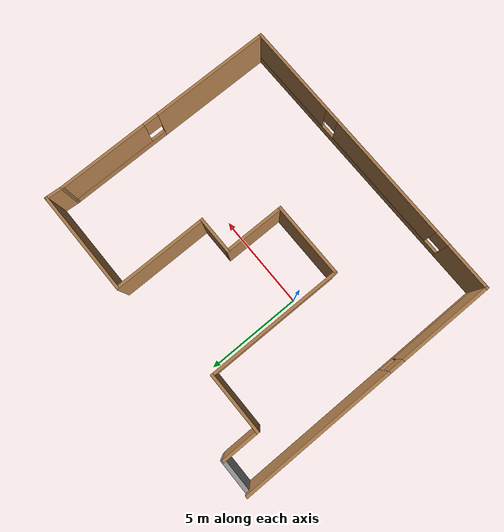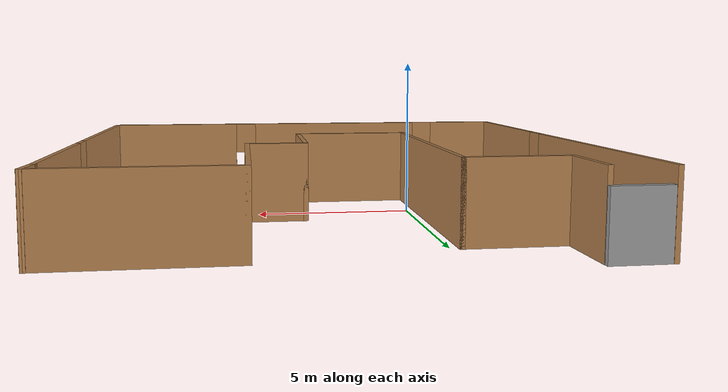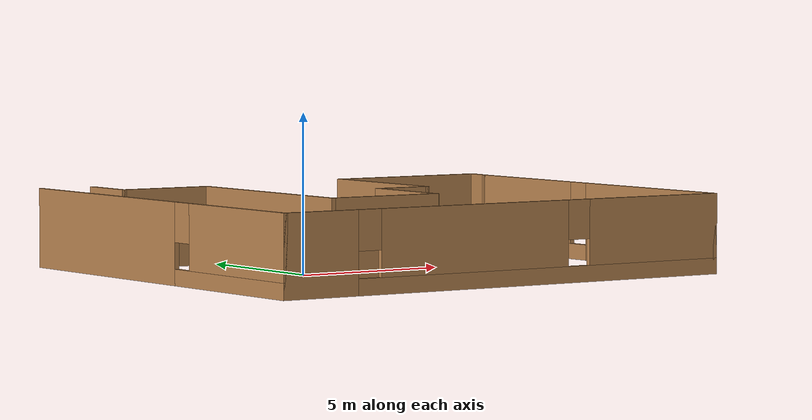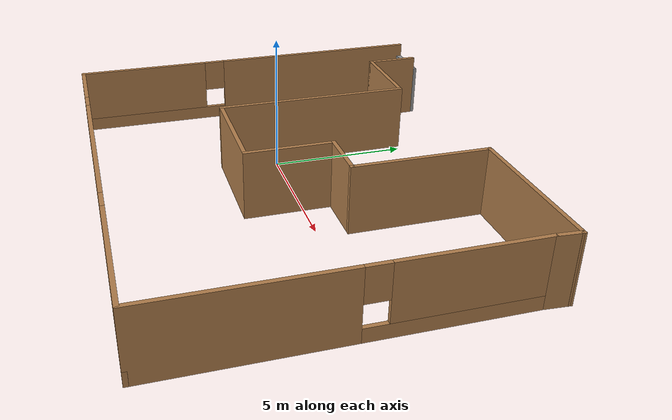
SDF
<?xml version='1.0'?>
<sdf version='1.7'>
  <model name='rest_2'>
    <pose>2.78562 0.128914 0 0 -0 0</pose>
    <link name='Door_2'>
      <collision name='Door_2_Collision'>
        <geometry>
          <box>
            <size>1.89187 0.2 2</size>
          </box>
        </geometry>
        <pose>0 0 1 0 -0 0</pose>
      </collision>
      <visual name='Door_2_Visual'>
        <pose>0 0 1 0 -0 0</pose>
        <geometry>
          <box>
            <size>1.89187 0.2 2</size>
          </box>
        </geometry>
        <material>
          <script>
            <uri>file://media/materials/scripts/gazebo.material</uri>
            <name>Gazebo/Grey</name>
          </script>
        </material>
      </visual>
      <pose>-7.08074 6.8942 0 0 -0 0</pose>
    </link>
    <link name='Wall_16'>
      <pose>-7.95686 -0 0 0 -0 -1.5708</pose>
      <visual name='Wall_16_Visual_0'>
        <pose>-2.94125 0 1.25 0 -0 0</pose>
        <geometry>
          <box>
            <size>8.1175 0.15 2.5</size>
          </box>
        </geometry>
        <material>
          <script>
            <uri>file://media/materials/scripts/gazebo.material</uri>
            <name>Gazebo/Wood</name>
          </script>
          <ambient>1 1 1 1</ambient>
        </material>
        <meta>
          <layer>0</layer>
        </meta>
      </visual>
      <collision name='Wall_16_Collision_0'>
        <geometry>
          <box>
            <size>8.1175 0.15 2.5</size>
          </box>
        </geometry>
        <pose>-2.94125 0 1.25 0 -0 0</pose>
      </collision>
      <visual name='Wall_16_Visual_1'>
        <pose>4.05875 0 0.25 0 -0 0</pose>
        <geometry>
          <box>
            <size>5.8825 0.15 0.5</size>
          </box>
        </geometry>
        <material>
          <script>
            <uri>file://media/materials/scripts/gazebo.material</uri>
            <name>Gazebo/Wood</name>
          </script>
          <ambient>1 1 1 1</ambient>
        </material>
        <meta>
          <layer>0</layer>
        </meta>
      </visual>
      <collision name='Wall_16_Collision_1'>
        <geometry>
          <box>
            <size>5.8825 0.15 0.5</size>
          </box>
        </geometry>
        <pose>4.05875 0 0.25 0 -0 0</pose>
      </collision>
      <visual name='Wall_16_Visual_2'>
        <pose>4.45875 0 1.5 0 -0 0</pose>
        <geometry>
          <box>
            <size>5.0825 0.15 2</size>
          </box>
        </geometry>
        <material>
          <script>
            <uri>file://media/materials/scripts/gazebo.material</uri>
            <name>Gazebo/Wood</name>
          </script>
          <ambient>1 1 1 1</ambient>
        </material>
        <meta>
          <layer>0</layer>
        </meta>
      </visual>
      <collision name='Wall_16_Collision_2'>
        <geometry>
          <box>
            <size>5.0825 0.15 2</size>
          </box>
        </geometry>
        <pose>4.45875 0 1.5 0 -0 0</pose>
      </collision>
      <visual name='Wall_16_Visual_3'>
        <pose>1.5175 0 1.9 0 -0 0</pose>
        <geometry>
          <box>
            <size>0.8 0.15 1.2</size>
          </box>
        </geometry>
        <material>
          <script>
            <uri>file://media/materials/scripts/gazebo.material</uri>
            <name>Gazebo/Wood</name>
          </script>
          <ambient>1 1 1 1</ambient>
        </material>
        <meta>
          <layer>0</layer>
        </meta>
      </visual>
      <collision name='Wall_16_Collision_3'>
        <geometry>
          <box>
            <size>0.8 0.15 1.2</size>
          </box>
        </geometry>
        <pose>1.5175 0 1.9 0 -0 0</pose>
      </collision>
    </link>
    <link name='Wall_18'>
      <pose>-0.031855 -6.925 0 0 -0 0</pose>
      <visual name='Wall_18_Visual_0'>
        <pose>-6.70268 0 1.25 0 -0 0</pose>
        <geometry>
          <box>
            <size>2.59465 0.15 2.5</size>
          </box>
        </geometry>
        <material>
          <script>
            <uri>file://media/materials/scripts/gazebo.material</uri>
            <name>Gazebo/Wood</name>
          </script>
          <ambient>1 1 1 1</ambient>
        </material>
        <meta>
          <layer>0</layer>
        </meta>
      </visual>
      <collision name='Wall_18_Collision_0'>
        <geometry>
          <box>
            <size>2.59465 0.15 2.5</size>
          </box>
        </geometry>
        <pose>-6.70268 0 1.25 0 -0 0</pose>
      </collision>
      <visual name='Wall_18_Visual_1'>
        <pose>1.29733 0 0.25 0 -0 0</pose>
        <geometry>
          <box>
            <size>13.4054 0.15 0.5</size>
          </box>
        </geometry>
        <material>
          <script>
            <uri>file://media/materials/scripts/gazebo.material</uri>
            <name>Gazebo/Wood</name>
          </script>
          <ambient>1 1 1 1</ambient>
        </material>
        <meta>
          <layer>0</layer>
        </meta>
      </visual>
      <collision name='Wall_18_Collision_1'>
        <geometry>
          <box>
            <size>13.4054 0.15 0.5</size>
          </box>
        </geometry>
        <pose>1.29733 0 0.25 0 -0 0</pose>
      </collision>
      <visual name='Wall_18_Visual_2'>
        <pose>-1.18845 0 1.5 0 -0 0</pose>
        <geometry>
          <box>
            <size>6.83379 0.15 2</size>
          </box>
        </geometry>
        <material>
          <script>
            <uri>file://media/materials/scripts/gazebo.material</uri>
            <name>Gazebo/Wood</name>
          </script>
          <ambient>1 1 1 1</ambient>
        </material>
        <meta>
          <layer>0</layer>
        </meta>
      </visual>
      <collision name='Wall_18_Collision_2'>
        <geometry>
          <box>
            <size>6.83379 0.15 2</size>
          </box>
        </geometry>
        <pose>-1.18845 0 1.5 0 -0 0</pose>
      </collision>
      <visual name='Wall_18_Visual_3'>
        <pose>5.51422 0 1.5 0 -0 0</pose>
        <geometry>
          <box>
            <size>4.97156 0.15 2</size>
          </box>
        </geometry>
        <material>
          <script>
            <uri>file://media/materials/scripts/gazebo.material</uri>
            <name>Gazebo/Wood</name>
          </script>
          <ambient>1 1 1 1</ambient>
        </material>
        <meta>
          <layer>0</layer>
        </meta>
      </visual>
      <collision name='Wall_18_Collision_3'>
        <geometry>
          <box>
            <size>4.97156 0.15 2</size>
          </box>
        </geometry>
        <pose>5.51422 0 1.5 0 -0 0</pose>
      </collision>
      <visual name='Wall_18_Visual_4'>
        <pose>-5.00535 0 1.9 0 -0 0</pose>
        <geometry>
          <box>
            <size>0.8 0.15 1.2</size>
          </box>
        </geometry>
        <material>
          <script>
            <uri>file://media/materials/scripts/gazebo.material</uri>
            <name>Gazebo/Wood</name>
          </script>
          <ambient>1 1 1 1</ambient>
        </material>
        <meta>
          <layer>0</layer>
        </meta>
      </visual>
      <collision name='Wall_18_Collision_4'>
        <geometry>
          <box>
            <size>0.8 0.15 1.2</size>
          </box>
        </geometry>
        <pose>-5.00535 0 1.9 0 -0 0</pose>
      </collision>
      <visual name='Wall_18_Visual_5'>
        <pose>2.62844 0 1.9 0 -0 0</pose>
        <geometry>
          <box>
            <size>0.8 0.15 1.2</size>
          </box>
        </geometry>
        <material>
          <script>
            <uri>file://media/materials/scripts/gazebo.material</uri>
            <name>Gazebo/Wood</name>
          </script>
          <ambient>1 1 1 1</ambient>
        </material>
        <meta>
          <layer>0</layer>
        </meta>
      </visual>
      <collision name='Wall_18_Collision_5'>
        <geometry>
          <box>
            <size>0.8 0.15 1.2</size>
          </box>
        </geometry>
        <pose>2.62844 0 1.9 0 -0 0</pose>
      </collision>
    </link>
    <link name='Wall_20'>
      <pose>7.89314 -1 0 0 -0 1.5708</pose>
      <visual name='Wall_20_Visual_0'>
        <pose>-2.80794 0 1.25 0 -0 0</pose>
        <geometry>
          <box>
            <size>6.38412 0.15 2.5</size>
          </box>
        </geometry>
        <material>
          <script>
            <uri>file://media/materials/scripts/gazebo.material</uri>
            <name>Gazebo/Wood</name>
          </script>
          <ambient>1 1 1 1</ambient>
        </material>
        <meta>
          <layer>0</layer>
        </meta>
      </visual>
      <collision name='Wall_20_Collision_0'>
        <geometry>
          <box>
            <size>6.38412 0.15 2.5</size>
          </box>
        </geometry>
        <pose>-2.80794 0 1.25 0 -0 0</pose>
      </collision>
      <visual name='Wall_20_Visual_1'>
        <pose>3.19206 0 0.25 0 -0 0</pose>
        <geometry>
          <box>
            <size>5.61588 0.15 0.5</size>
          </box>
        </geometry>
        <material>
          <script>
            <uri>file://media/materials/scripts/gazebo.material</uri>
            <name>Gazebo/Wood</name>
          </script>
          <ambient>1 1 1 1</ambient>
        </material>
        <meta>
          <layer>0</layer>
        </meta>
      </visual>
      <collision name='Wall_20_Collision_1'>
        <geometry>
          <box>
            <size>5.61588 0.15 0.5</size>
          </box>
        </geometry>
        <pose>3.19206 0 0.25 0 -0 0</pose>
      </collision>
      <visual name='Wall_20_Visual_2'>
        <pose>3.59206 0 1.5 0 -0 0</pose>
        <geometry>
          <box>
            <size>4.81588 0.15 2</size>
          </box>
        </geometry>
        <material>
          <script>
            <uri>file://media/materials/scripts/gazebo.material</uri>
            <name>Gazebo/Wood</name>
          </script>
          <ambient>1 1 1 1</ambient>
        </material>
        <meta>
          <layer>0</layer>
        </meta>
      </visual>
      <collision name='Wall_20_Collision_2'>
        <geometry>
          <box>
            <size>4.81588 0.15 2</size>
          </box>
        </geometry>
        <pose>3.59206 0 1.5 0 -0 0</pose>
      </collision>
      <visual name='Wall_20_Visual_3'>
        <pose>0.784116 0 1.9 0 -0 0</pose>
        <geometry>
          <box>
            <size>0.8 0.15 1.2</size>
          </box>
        </geometry>
        <material>
          <script>
            <uri>file://media/materials/scripts/gazebo.material</uri>
            <name>Gazebo/Wood</name>
          </script>
          <ambient>1 1 1 1</ambient>
        </material>
        <meta>
          <layer>0</layer>
        </meta>
      </visual>
      <collision name='Wall_20_Collision_3'>
        <geometry>
          <box>
            <size>0.8 0.15 1.2</size>
          </box>
        </geometry>
        <pose>0.784116 0 1.9 0 -0 0</pose>
      </collision>
    </link>
    <link name='Wall_22'>
      <collision name='Wall_22_Collision'>
        <geometry>
          <box>
            <size>2 0.15 2.5</size>
          </box>
        </geometry>
        <pose>0 0 1.25 0 -0 0</pose>
      </collision>
      <visual name='Wall_22_Visual'>
        <pose>0 0 1.25 0 -0 0</pose>
        <geometry>
          <box>
            <size>2 0.15 2.5</size>
          </box>
        </geometry>
        <material>
          <script>
            <uri>file://media/materials/scripts/gazebo.material</uri>
            <name>Gazebo/Wood</name>
          </script>
          <ambient>1 1 1 1</ambient>
        </material>
        <meta>
          <layer>0</layer>
        </meta>
      </visual>
      <pose>-6.1981 5.85594 0 0 -0 -1.5708</pose>
    </link>
    <link name='Wall_23'>
      <collision name='Wall_23_Collision'>
        <geometry>
          <box>
            <size>3.25 0.15 2.5</size>
          </box>
        </geometry>
        <pose>0 0 1.25 0 -0 0</pose>
      </collision>
      <visual name='Wall_23_Visual'>
        <pose>0 0 1.25 0 -0 0</pose>
        <geometry>
          <box>
            <size>3.25 0.15 2.5</size>
          </box>
        </geometry>
        <material>
          <script>
            <uri>file://media/materials/scripts/gazebo.material</uri>
            <name>Gazebo/Wood</name>
          </script>
          <ambient>1 1 1 1</ambient>
        </material>
        <meta>
          <layer>0</layer>
        </meta>
      </visual>
      <pose>-4.6481 4.93094 0 0 -0 0</pose>
    </link>
    <link name='Wall_24'>
      <collision name='Wall_24_Collision'>
        <geometry>
          <box>
            <size>7.25 0.15 2.5</size>
          </box>
        </geometry>
        <pose>0 0 1.25 0 -0 0</pose>
      </collision>
      <visual name='Wall_24_Visual'>
        <pose>0 0 1.25 0 -0 0</pose>
        <geometry>
          <box>
            <size>7.25 0.15 2.5</size>
          </box>
        </geometry>
        <material>
          <script>
            <uri>file://media/materials/scripts/gazebo.material</uri>
            <name>Gazebo/Wood</name>
          </script>
          <ambient>1 1 1 1</ambient>
        </material>
        <meta>
          <layer>0</layer>
        </meta>
      </visual>
      <pose>-3.0981 1.38094 0 0 -0 -1.5708</pose>
    </link>
    <link name='Wall_25'>
      <collision name='Wall_25_Collision'>
        <geometry>
          <box>
            <size>4 0.15 2.5</size>
          </box>
        </geometry>
        <pose>0 0 1.25 0 -0 0</pose>
      </collision>
      <visual name='Wall_25_Visual'>
        <pose>0 0 1.25 0 -0 0</pose>
        <geometry>
          <box>
            <size>4 0.15 2.5</size>
          </box>
        </geometry>
        <material>
          <script>
            <uri>file://media/materials/scripts/gazebo.material</uri>
            <name>Gazebo/Wood</name>
          </script>
          <ambient>1 1 1 1</ambient>
        </material>
        <meta>
          <layer>0</layer>
        </meta>
      </visual>
      <pose>-1.1731 -2.16906 0 0 -0 0</pose>
    </link>
    <link name='Wall_26'>
      <collision name='Wall_26_Collision'>
        <geometry>
          <box>
            <size>3.25 0.15 2.5</size>
          </box>
        </geometry>
        <pose>0 0 1.25 0 -0 0</pose>
      </collision>
      <visual name='Wall_26_Visual'>
        <pose>0 0 1.25 0 -0 0</pose>
        <geometry>
          <box>
            <size>3.25 0.15 2.5</size>
          </box>
        </geometry>
        <material>
          <script>
            <uri>file://media/materials/scripts/gazebo.material</uri>
            <name>Gazebo/Wood</name>
          </script>
          <ambient>1 1 1 1</ambient>
        </material>
        <meta>
          <layer>0</layer>
        </meta>
      </visual>
      <pose>0.751896 -0.619058 0 0 -0 1.5708</pose>
    </link>
    <link name='Wall_27'>
      <collision name='Wall_27_Collision'>
        <geometry>
          <box>
            <size>2 0.15 2.5</size>
          </box>
        </geometry>
        <pose>0 0 1.25 0 -0 0</pose>
      </collision>
      <visual name='Wall_27_Visual'>
        <pose>0 0 1.25 0 -0 0</pose>
        <geometry>
          <box>
            <size>2 0.15 2.5</size>
          </box>
        </geometry>
        <material>
          <script>
            <uri>file://media/materials/scripts/gazebo.material</uri>
            <name>Gazebo/Wood</name>
          </script>
          <ambient>1 1 1 1</ambient>
        </material>
        <meta>
          <layer>0</layer>
        </meta>
      </visual>
      <pose>1.6769 0.930942 0 0 -0 0</pose>
    </link>
    <link name='Wall_28'>
      <collision name='Wall_28_Collision'>
        <geometry>
          <box>
            <size>5 0.15 2.5</size>
          </box>
        </geometry>
        <pose>0 0 1.25 0 -0 0</pose>
      </collision>
      <visual name='Wall_28_Visual'>
        <pose>0 0 1.25 0 -0 0</pose>
        <geometry>
          <box>
            <size>5 0.15 2.5</size>
          </box>
        </geometry>
        <material>
          <script>
            <uri>file://media/materials/scripts/gazebo.material</uri>
            <name>Gazebo/Wood</name>
          </script>
          <ambient>1 1 1 1</ambient>
        </material>
        <meta>
          <layer>0</layer>
        </meta>
      </visual>
      <pose>2.6019 3.35594 0 0 -0 1.5708</pose>
    </link>
    <link name='Wall_29'>
      <collision name='Wall_29_Collision'>
        <geometry>
          <box>
            <size>5.5 0.15 2.5</size>
          </box>
        </geometry>
        <pose>0 0 1.25 0 -0 0</pose>
      </collision>
      <visual name='Wall_29_Visual'>
        <pose>0 0 1.25 0 -0 0</pose>
        <geometry>
          <box>
            <size>5.5 0.15 2.5</size>
          </box>
        </geometry>
        <material>
          <script>
            <uri>file://media/materials/scripts/gazebo.material</uri>
            <name>Gazebo/Wood</name>
          </script>
          <ambient>1 1 1 1</ambient>
        </material>
        <meta>
          <layer>0</layer>
        </meta>
      </visual>
      <pose>5.2769 5.78094 0 0 -0 0</pose>
    </link>
    <link name='Wall_30'>
      <collision name='Wall_30_Collision'>
        <geometry>
          <box>
            <size>1.00796 0.15 2.5</size>
          </box>
        </geometry>
        <pose>0 0 1.25 0 -0 0</pose>
      </collision>
      <visual name='Wall_30_Visual'>
        <pose>0 0 1.25 0 -0 0</pose>
        <geometry>
          <box>
            <size>1.00796 0.15 2.5</size>
          </box>
        </geometry>
        <material>
          <script>
            <uri>file://media/materials/scripts/gazebo.material</uri>
            <name>Gazebo/Wood</name>
          </script>
          <ambient>1 1 1 1</ambient>
        </material>
        <meta>
          <layer>0</layer>
        </meta>
      </visual>
      <pose>7.92252 5.35297 0 0 -0 -1.63933</pose>
    </link>
    <static>1</static>
  </model>
</sdf>
